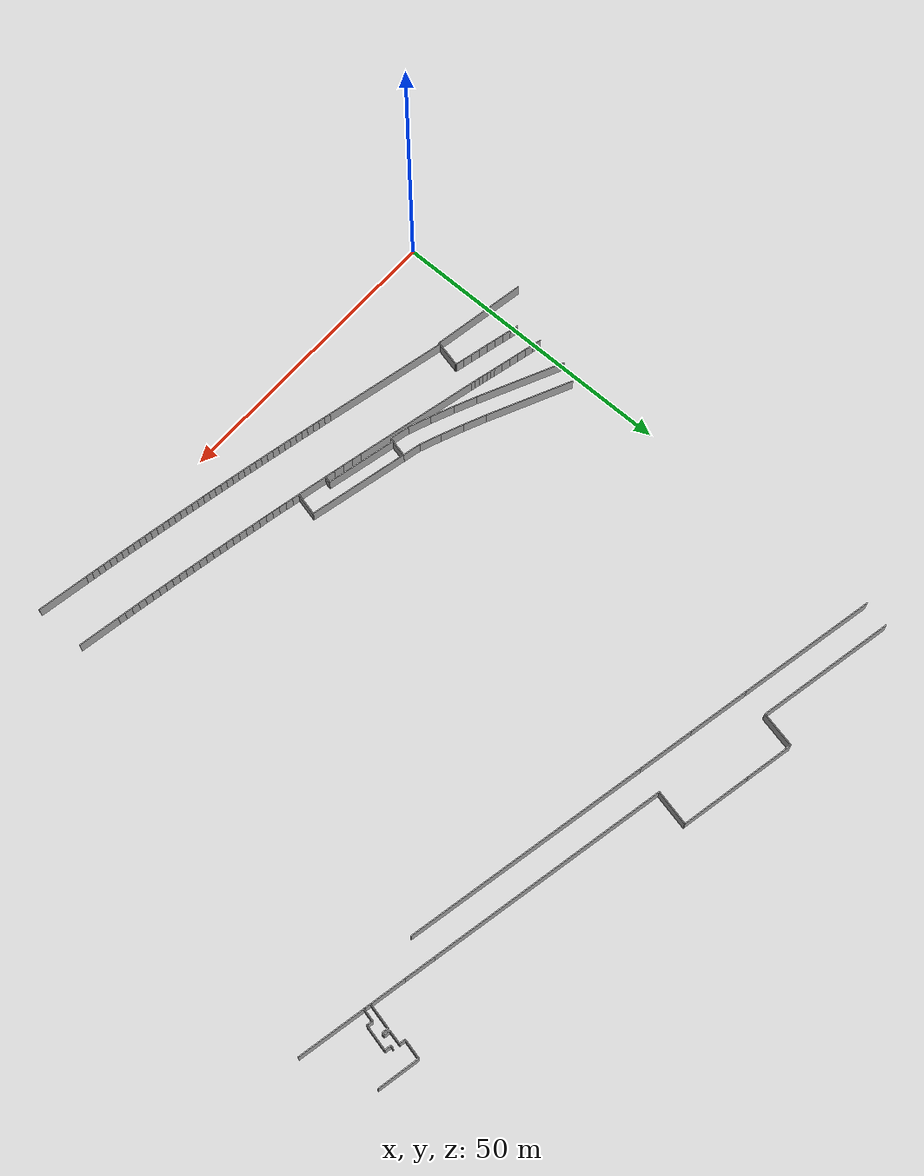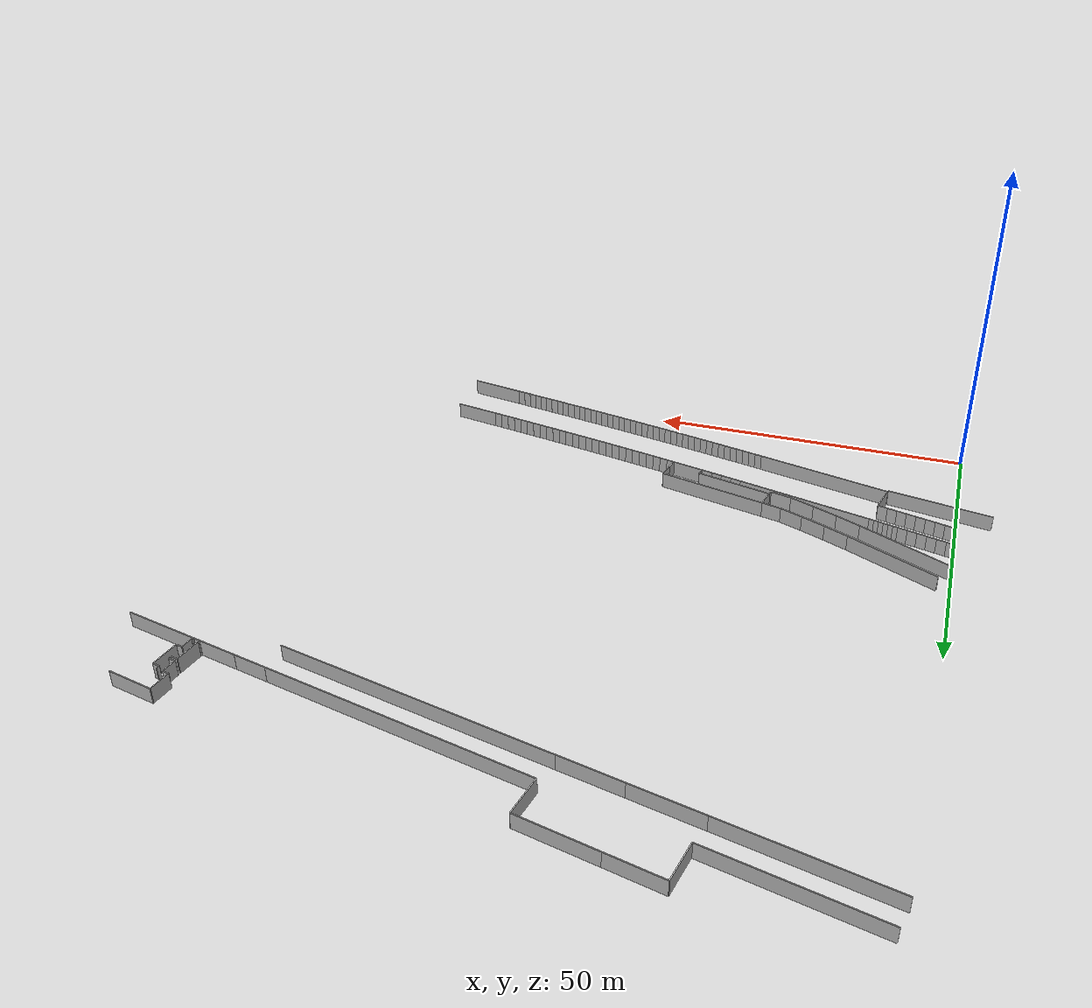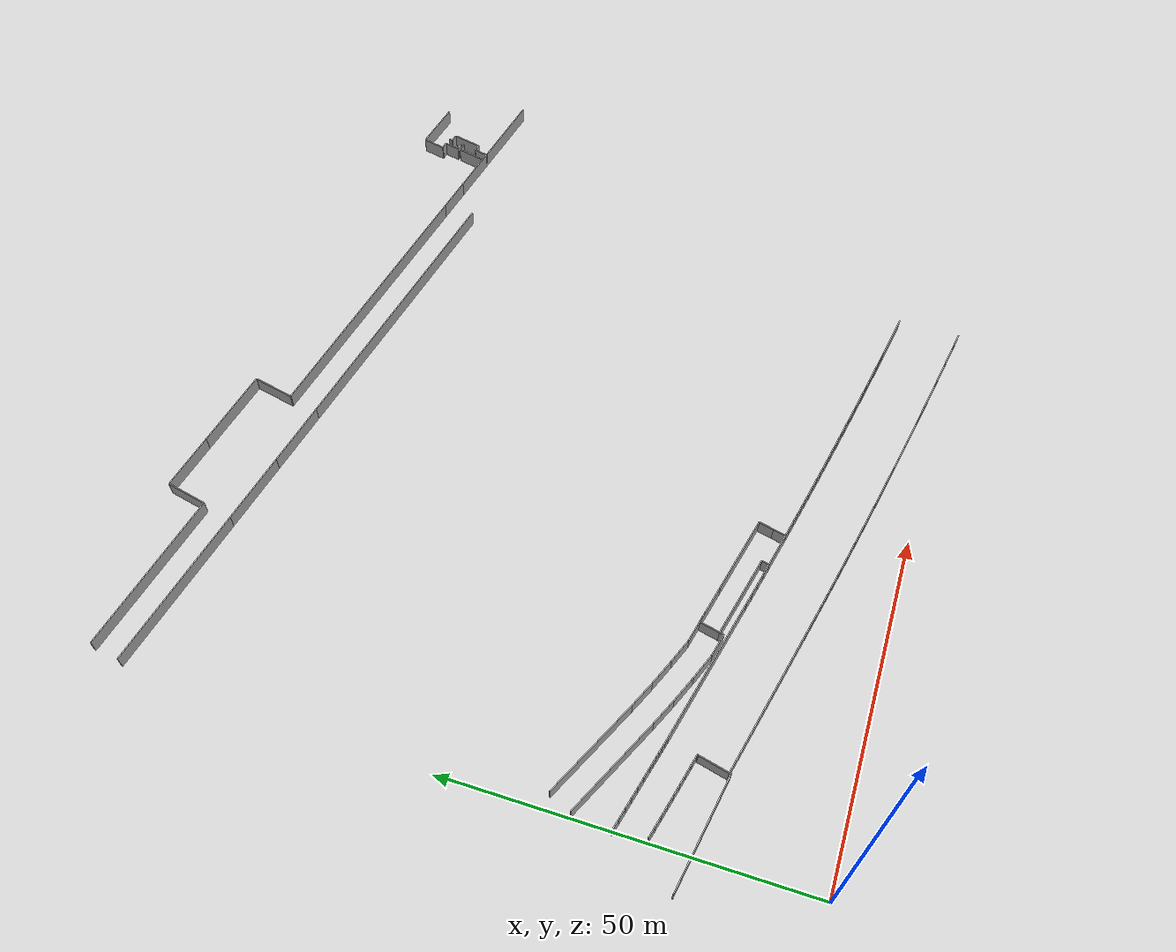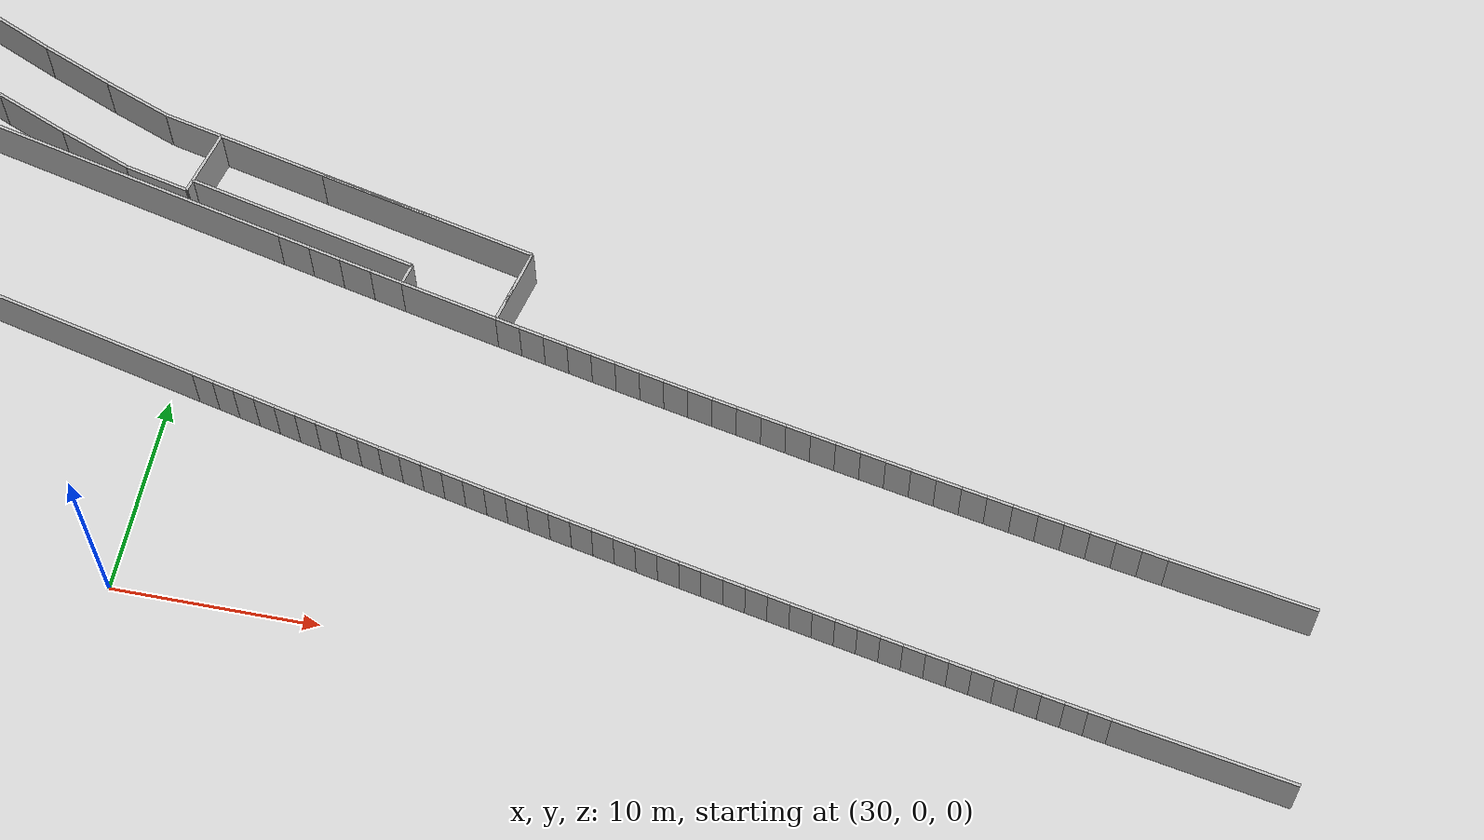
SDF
<sdf version="1.6">
 <model name="sps_0902">
  <static>1</static>
  <allow_auto_disable>0</allow_auto_disable>
  <link name="Wall28">
   <collision name="collision"><geometry><box><size>15.0816 0.15 2.5</size></box></geometry></collision>
   <visual name="visual">
    <geometry><box><size>15.0816 0.15 2.5</size></box></geometry>
    <transparency>0.0</transparency>
   </visual>
   <pose>7.05285 29.0338 1.25 0 -0 2.70048</pose>
  </link>
  <link name="Wall29">
   <collision name="collision"><geometry><box><size>4.01389 0.15 2.5</size></box></geometry></collision>
   <visual name="visual">
    <geometry><box><size>4.01389 0.15 2.5</size></box></geometry>
    <transparency>0.0</transparency>
   </visual>
   <pose>19.4061 23.41 1.25 0 -0 2.74713</pose>
  </link>
  <link name="Wall30">
   <collision name="collision"><geometry><box><size>5.98038 0.15 2.5</size></box></geometry></collision>
   <visual name="visual">
    <geometry><box><size>5.98038 0.15 2.5</size></box></geometry>
    <transparency>0.0</transparency>
   </visual>
   <pose>25.7827 95.2165 1.25 0 0 -1.78506</pose>
  </link>
  <link name="Wall31">
   <collision name="collision"><geometry><box><size>21.1297 0.15 2.5</size></box></geometry></collision>
   <visual name="visual">
    <geometry><box><size>21.1297 0.15 2.5</size></box></geometry>
    <transparency>0.0</transparency>
   </visual>
   <pose>23.0045 21.1647 1.25 0 0 -0.231213</pose>
  </link>
  <link name="Wall118">
   <collision name="collision"><geometry><box><size>16.258 0.15 2.5</size></box></geometry></collision>
   <visual name="visual">
    <geometry><box><size>16.258 0.15 2.5</size></box></geometry>
    <transparency>0.0</transparency>
   </visual>
   <pose>2.6691 16.4683 1.25 0 0 -0.176184</pose>
  </link>
  <link name="Wall119">
   <collision name="collision"><geometry><box><size>5.13421 0.15 2.5</size></box></geometry></collision>
   <visual name="visual">
    <geometry><box><size>5.13421 0.15 2.5</size></box></geometry>
    <transparency>0.0</transparency>
   </visual>
   <pose>86.9778 78.8386 1.25 0 -0 2.92731</pose>
  </link>
  <link name="Wall120">
   <collision name="collision"><geometry><box><size>40.7111 0.15 2.5</size></box></geometry></collision>
   <visual name="visual">
    <geometry><box><size>40.7111 0.15 2.5</size></box></geometry>
    <transparency>0.0</transparency>
   </visual>
   <pose>64.5795 83.7131 1.25 0 -0 2.92731</pose>
  </link>
  <link name="Wall121">
   <collision name="collision"><geometry><box><size>8.60433 0.15 2.5</size></box></geometry></collision>
   <visual name="visual">
    <geometry><box><size>8.60433 0.15 2.5</size></box></geometry>
    <transparency>0.0</transparency>
   </visual>
   <pose>80.2364 0.370085 1.25 0 0 -0.179431</pose>
  </link>
  <link name="Wall123">
   <collision name="collision"><geometry><box><size>7.06281 0.15 2.5</size></box></geometry></collision>
   <visual name="visual">
    <geometry><box><size>7.06281 0.15 2.5</size></box></geometry>
    <transparency>0.0</transparency>
   </visual>
   <pose>80.9947 8.87143 1.25 0 0 -0.179443</pose>
  </link>
  <link name="Wall196">
   <collision name="collision"><geometry><box><size>3.94369 0.15 2.5</size></box></geometry></collision>
   <visual name="visual">
    <geometry><box><size>3.94369 0.15 2.5</size></box></geometry>
    <transparency>0.0</transparency>
   </visual>
   <pose>17.1317 28.1964 1.25 0 0 -0.417479</pose>
  </link>
  <link name="Wall197">
   <collision name="collision"><geometry><box><size>21.1844 0.15 2.5</size></box></geometry></collision>
   <visual name="visual">
    <geometry><box><size>21.1844 0.15 2.5</size></box></geometry>
    <transparency>0.0</transparency>
   </visual>
   <pose>21.0443 12.8755 1.25 0 0 -0.229613</pose>
  </link>
  <link name="Wall198">
   <collision name="collision"><geometry><box><size>5.98036 0.15 2.5</size></box></geometry></collision>
   <visual name="visual">
    <geometry><box><size>5.98036 0.15 2.5</size></box></geometry>
    <transparency>0.0</transparency>
   </visual>
   <pose>45.3254 90.9635 1.25 0 0 -1.78509</pose>
  </link>
  <link name="Wall287">
   <collision name="collision"><geometry><box><size>3.93435 0.15 2.5</size></box></geometry></collision>
   <visual name="visual">
    <geometry><box><size>3.93435 0.15 2.5</size></box></geometry>
    <transparency>0.0</transparency>
   </visual>
   <pose>20.7505 26.6414 1.25 0 0 -0.394179</pose>
  </link>
  <link name="Wall288">
   <collision name="collision"><geometry><box><size>9.50174 0.15 2.5</size></box></geometry></collision>
   <visual name="visual">
    <geometry><box><size>9.50174 0.15 2.5</size></box></geometry>
    <transparency>0.0</transparency>
   </visual>
   <pose>39.1117 84.7528 1.25 0 -0 2.92731</pose>
  </link>
  <link name="Wall289">
   <collision name="collision"><geometry><box><size>10.4985 0.15 2.5</size></box></geometry></collision>
   <visual name="visual">
    <geometry><box><size>10.4985 0.15 2.5</size></box></geometry>
    <transparency>0.0</transparency>
   </visual>
   <pose>29.3403 86.8793 1.25 0 -0 2.92731</pose>
  </link>
  <link name="Wall290">
   <collision name="collision"><geometry><box><size>5.6374 0.15 2.5</size></box></geometry></collision>
   <visual name="visual">
    <geometry><box><size>5.6374 0.15 2.5</size></box></geometry>
    <transparency>0.0</transparency>
   </visual>
   <pose>31.7244 23.2149 1.25 0 0 -0.229042</pose>
  </link>
  <link name="Wall291">
   <collision name="collision"><geometry><box><size>11.3628 0.15 2.5</size></box></geometry></collision>
   <visual name="visual">
    <geometry><box><size>11.3628 0.15 2.5</size></box></geometry>
    <transparency>0.0</transparency>
   </visual>
   <pose>40.0025 21.285 1.25 0 0 -0.229042</pose>
  </link>
  <link name="Wall354">
   <collision name="collision"><geometry><box><size>4.02733 0.15 2.5</size></box></geometry></collision>
   <visual name="visual">
    <geometry><box><size>4.02733 0.15 2.5</size></box></geometry>
    <transparency>0.0</transparency>
   </visual>
   <pose>15.7125 24.9978 1.25 0 -0 2.72409</pose>
  </link>
  <link name="Wall355">
   <collision name="collision"><geometry><box><size>3.95796 0.15 2.5</size></box></geometry></collision>
   <visual name="visual">
    <geometry><box><size>3.95796 0.15 2.5</size></box></geometry>
    <transparency>0.0</transparency>
   </visual>
   <pose>23.1028 21.9201 1.25 0 -0 2.76998</pose>
  </link>
  <link name="Wall356">
   <collision name="collision"><geometry><box><size>23.6493 0.15 2.5</size></box></geometry></collision>
   <visual name="visual">
    <geometry><box><size>23.6493 0.15 2.5</size></box></geometry>
    <transparency>0.0</transparency>
   </visual>
   <pose>13.5927 94.8092 1.25 0 -0 2.92731</pose>
  </link>
  <link name="Wall357">
   <collision name="collision"><geometry><box><size>3.07591 0.15 2.5</size></box></geometry></collision>
   <visual name="visual">
    <geometry><box><size>3.07591 0.15 2.5</size></box></geometry>
    <transparency>0.0</transparency>
   </visual>
   <pose>27.4815 24.204 1.25 0 0 -0.229</pose>
  </link>
  <link name="Wall364">
   <collision name="collision"><geometry><box><size>41.6686 0.15 2.5</size></box></geometry></collision>
   <visual name="visual">
    <geometry><box><size>41.6686 0.15 2.5</size></box></geometry>
    <transparency>0.0</transparency>
   </visual>
   <pose>64.1117 79.312 1.25 0 -0 2.9273</pose>
  </link>
  <link name="Wall435">
   <collision name="collision"><geometry><box><size>0.179735 0.15 2.5</size></box></geometry></collision>
   <visual name="visual">
    <geometry><box><size>0.179735 0.15 2.5</size></box></geometry>
    <transparency>0.0</transparency>
   </visual>
   <pose>11.743 19.5065 1.25 0 -0 1.33603</pose>
  </link>
  <link name="Wall436">
   <collision name="collision"><geometry><box><size>23.6497 0.15 2.5</size></box></geometry></collision>
   <visual name="visual">
    <geometry><box><size>23.6497 0.15 2.5</size></box></geometry>
    <transparency>0.0</transparency>
   </visual>
   <pose>12.6567 90.5101 1.25 0 -0 2.9273</pose>
  </link>
  <link name="Wall437">
   <collision name="collision"><geometry><box><size>11.7608 0.15 2.5</size></box></geometry></collision>
   <visual name="visual">
    <geometry><box><size>11.7608 0.15 2.5</size></box></geometry>
    <transparency>0.0</transparency>
   </visual>
   <pose>40.2154 95.1357 1.25 0 -0 2.92731</pose>
  </link>
  <link name="Wall438">
   <collision name="collision"><geometry><box><size>8.23941 0.15 2.5</size></box></geometry></collision>
   <visual name="visual">
    <geometry><box><size>8.23941 0.15 2.5</size></box></geometry>
    <transparency>0.0</transparency>
   </visual>
   <pose>30.444 97.2623 1.25 0 -0 2.92731</pose>
  </link>
  <link name="Wall532">
   <collision name="collision"><geometry><box><size>0.249583 0.15 2.5</size></box></geometry></collision>
   <visual name="visual">
    <geometry><box><size>0.249583 0.15 2.5</size></box></geometry>
    <transparency>0.0</transparency>
   </visual>
   <pose>10.7012 15.1649 1.25 0 -0 1.33709</pose>
  </link>
  <link name="Wall533">
   <collision name="collision"><geometry><box><size>14.9395 0.15 2.5</size></box></geometry></collision>
   <visual name="visual">
    <geometry><box><size>14.9395 0.15 2.5</size></box></geometry>
    <transparency>0.0</transparency>
   </visual>
   <pose>8.57455 32.1851 1.25 0 0 -0.441118</pose>
  </link>
  <link name="Wall534">
   <collision name="collision"><geometry><box><size>3.66754 0.15 2.5</size></box></geometry></collision>
   <visual name="visual">
    <geometry><box><size>3.66754 0.15 2.5</size></box></geometry>
    <transparency>0.0</transparency>
   </visual>
   <pose>24.2753 25.2195 1.25 0 0 -0.371909</pose>
  </link>
  <link name="Wall535">
   <collision name="collision"><geometry><box><size>3.32587 0.15 2.5</size></box></geometry></collision>
   <visual name="visual">
    <geometry><box><size>3.32587 0.15 2.5</size></box></geometry>
    <transparency>0.0</transparency>
   </visual>
   <pose>26.5662 20.8238 1.25 0 -0 2.91247</pose>
  </link>
  <link name="Wall536">
   <collision name="collision"><geometry><box><size>0.61782 0.15 2.5</size></box></geometry></collision>
   <visual name="visual">
    <geometry><box><size>0.61782 0.15 2.5</size></box></geometry>
    <transparency>0.0</transparency>
   </visual>
   <pose>28.2556 20.747 1.25 0 0 -1.79941</pose>
  </link>
  <link name="Wall537">
   <collision name="collision"><geometry><box><size>2.15842 0.15 2.5</size></box></geometry></collision>
   <visual name="visual">
    <geometry><box><size>2.15842 0.15 2.5</size></box></geometry>
    <transparency>0.0</transparency>
   </visual>
   <pose>45.2903 18.9441 1.25 0 0 -1.79996</pose>
  </link>
  <link name="Wall538">
   <collision name="collision"><geometry><box><size>1.77993 0.15 2.5</size></box></geometry></collision>
   <visual name="visual">
    <geometry><box><size>1.77993 0.15 2.5</size></box></geometry>
    <transparency>0.0</transparency>
   </visual>
   <pose>44.843 17.0264 1.25 0 0 -1.79996</pose>
  </link>
  <link name="Wall539">
   <collision name="collision"><geometry><box><size>18.5 0.15 2.5</size></box></geometry></collision>
   <visual name="visual">
    <geometry><box><size>18.5 0.15 2.5</size></box></geometry>
    <transparency>0.0</transparency>
   </visual>
   <pose>98.5246 76.3257 1.25 0 0 -0.214283</pose>
  </link>
  <link name="Wall995">
   <collision name="collision"><geometry><box><size>0.249583 0.15 2.5</size></box></geometry></collision>
   <visual name="visual">
    <geometry><box><size>0.249583 0.15 2.5</size></box></geometry>
    <transparency>0.0</transparency>
   </visual>
   <pose>10.7012 15.1649 1.25 0 0 -1.80451</pose>
  </link>
  <link name="Wall1007">
   <collision name="collision"><geometry><box><size>4.2502 0.15 2.5</size></box></geometry></collision>
   <visual name="visual">
    <geometry><box><size>4.2502 0.15 2.5</size></box></geometry>
    <transparency>0.0</transparency>
   </visual>
   <pose>11.2261 17.3527 1.25 0 0 -1.80637</pose>
  </link>
  <link name="Wall1008">
   <collision name="collision"><geometry><box><size>2.8821 0.15 2.5</size></box></geometry></collision>
   <visual name="visual">
    <geometry><box><size>2.8821 0.15 2.5</size></box></geometry>
    <transparency>0.0</transparency>
   </visual>
   <pose>28.6525 22.4514 1.25 0 -0 1.34202</pose>
  </link>
  <link name="Wall1009">
   <collision name="collision"><geometry><box><size>17.0002 0.15 2.5</size></box></geometry></collision>
   <visual name="visual">
    <geometry><box><size>17.0002 0.15 2.5</size></box></geometry>
    <transparency>0.0</transparency>
   </visual>
   <pose>37.2574 21.925 1.25 0 0 -0.229042</pose>
  </link>
  <link name="Wall1010">
   <collision name="collision"><geometry><box><size>3.93835 0.15 2.5</size></box></geometry></collision>
   <visual name="visual">
    <geometry><box><size>3.93835 0.15 2.5</size></box></geometry>
    <transparency>0.0</transparency>
   </visual>
   <pose>45.0882 18.0774 1.25 0 0 -1.79996</pose>
  </link>
  <link name="Wall1011">
   <collision name="collision"><geometry><box><size>4.99972 0.15 2.5</size></box></geometry></collision>
   <visual name="visual">
    <geometry><box><size>4.99972 0.15 2.5</size></box></geometry>
    <transparency>0.0</transparency>
   </visual>
   <pose>42.2015 16.7066 1.25 0 -0 2.92103</pose>
  </link>
  <link name="Wall1012">
   <collision name="collision"><geometry><box><size>1.08065 0.15 2.5</size></box></geometry></collision>
   <visual name="visual">
    <geometry><box><size>1.08065 0.15 2.5</size></box></geometry>
    <transparency>0.0</transparency>
   </visual>
   <pose>39.8854 17.7796 1.25 0 -0 1.34076</pose>
  </link>
  <link name="Wall1013">
   <collision name="collision"><geometry><box><size>12.0005 0.15 2.5</size></box></geometry></collision>
   <visual name="visual">
    <geometry><box><size>12.0005 0.15 2.5</size></box></geometry>
    <transparency>0.0</transparency>
   </visual>
   <pose>34.1671 19.6768 1.25 0 -0 2.91105</pose>
  </link>
  <link name="Wall2366">
   <collision name="collision"><geometry><box><size>0.499995 0.15 2.5</size></box></geometry></collision>
   <visual name="visual">
    <geometry><box><size>0.499995 0.15 2.5</size></box></geometry>
    <transparency>0.0</transparency>
   </visual>
   <pose>97.8079 83.2656 1.25 0 0 -1.78483</pose>
  </link>
  <link name="Wall2367">
   <collision name="collision"><geometry><box><size>1.07993 0.15 2.5</size></box></geometry></collision>
   <visual name="visual">
    <geometry><box><size>1.07993 0.15 2.5</size></box></geometry>
    <transparency>0.0</transparency>
   </visual>
   <pose>98.2825 82.9065 1.25 0 0 -0.214255</pose>
  </link>
  <link name="Wall2368">
   <collision name="collision"><geometry><box><size>4.30218 0.15 2.5</size></box></geometry></collision>
   <visual name="visual">
    <geometry><box><size>4.30218 0.15 2.5</size></box></geometry>
    <transparency>0.0</transparency>
   </visual>
   <pose>98.3527 80.6898 1.25 0 0 -1.78507</pose>
  </link>
  <link name="Wall2369">
   <collision name="collision"><geometry><box><size>0.99991 0.15 2.5</size></box></geometry></collision>
   <visual name="visual">
    <geometry><box><size>0.99991 0.15 2.5</size></box></geometry>
    <transparency>0.0</transparency>
   </visual>
   <pose>97.4068 78.6942 1.25 0 -0 2.92735</pose>
  </link>
  <link name="Wall2370">
   <collision name="collision"><geometry><box><size>1.72873 0.15 2.5</size></box></geometry></collision>
   <visual name="visual">
    <geometry><box><size>1.72873 0.15 2.5</size></box></geometry>
    <transparency>0.0</transparency>
   </visual>
   <pose>96.7345 77.9559 1.25 0 0 -1.78505</pose>
  </link>
  <link name="Wall2371">
   <collision name="collision"><geometry><box><size>0.347934 0.15 2.5</size></box></geometry></collision>
   <visual name="visual">
    <geometry><box><size>0.347934 0.15 2.5</size></box></geometry>
    <transparency>0.0</transparency>
   </visual>
   <pose>96.5137 76.9413 1.25 0 0 -1.78522</pose>
  </link>
  <link name="Wall2372">
   <collision name="collision"><geometry><box><size>1.15995 0.15 2.5</size></box></geometry></collision>
   <visual name="visual">
    <geometry><box><size>1.15995 0.15 2.5</size></box></geometry>
    <transparency>0.0</transparency>
   </visual>
   <pose>95.91 76.8948 1.25 0 -0 2.92706</pose>
  </link>
  <link name="Wall2373">
   <collision name="collision"><geometry><box><size>0.347981 0.15 2.5</size></box></geometry></collision>
   <visual name="visual">
    <geometry><box><size>0.347981 0.15 2.5</size></box></geometry>
    <transparency>0.0</transparency>
   </visual>
   <pose>95.3803 77.1883 1.25 0 -0 1.35658</pose>
  </link>
  <link name="Wall2374">
   <collision name="collision"><geometry><box><size>3.87829 0.15 2.5</size></box></geometry></collision>
   <visual name="visual">
    <geometry><box><size>3.87829 0.15 2.5</size></box></geometry>
    <transparency>0.0</transparency>
   </visual>
   <pose>95.8296 79.2531 1.25 0 -0 1.35655</pose>
  </link>
  <link name="Wall2375">
   <collision name="collision"><geometry><box><size>1.07989 0.15 2.5</size></box></geometry></collision>
   <visual name="visual">
    <geometry><box><size>1.07989 0.15 2.5</size></box></geometry>
    <transparency>0.0</transparency>
   </visual>
   <pose>96.7695 81.0332 1.25 0 0 -0.214089</pose>
  </link>
  <link name="Wall2376">
   <collision name="collision"><geometry><box><size>0.399937 0.15 2.5</size></box></geometry></collision>
   <visual name="visual">
    <geometry><box><size>0.399937 0.15 2.5</size></box></geometry>
    <transparency>0.0</transparency>
   </visual>
   <pose>97.3396 81.1139 1.25 0 -0 1.35673</pose>
  </link>
  <link name="Wall2377">
   <collision name="collision"><geometry><box><size>1.07987 0.15 2.5</size></box></geometry></collision>
   <visual name="visual">
    <geometry><box><size>1.07987 0.15 2.5</size></box></geometry>
    <transparency>0.0</transparency>
   </visual>
   <pose>96.8545 81.4241 1.25 0 -0 2.92733</pose>
  </link>
  <link name="Wall2378">
   <collision name="collision"><geometry><box><size>2.25233 0.15 2.5</size></box></geometry></collision>
   <visual name="visual">
    <geometry><box><size>2.25233 0.15 2.5</size></box></geometry>
    <transparency>0.0</transparency>
   </visual>
   <pose>96.5664 82.6393 1.25 0 -0 1.35649</pose>
  </link>
  <link name="Wall2379">
   <collision name="collision"><geometry><box><size>1.00027 0.15 2.5</size></box></geometry></collision>
   <visual name="visual">
    <geometry><box><size>1.00027 0.15 2.5</size></box></geometry>
    <transparency>0.0</transparency>
   </visual>
   <pose>96.3172 83.846 1.25 0 -0 2.92743</pose>
  </link>
  <link name="Wall2380">
   <collision name="collision"><geometry><box><size>3.25956 0.15 2.5</size></box></geometry></collision>
   <visual name="visual">
    <geometry><box><size>3.25956 0.15 2.5</size></box></geometry>
    <transparency>0.0</transparency>
   </visual>
   <pose>96.175 85.5448 1.25 0 -0 1.3565</pose>
  </link>
  <link name="Wall2381">
   <collision name="collision"><geometry><box><size>7.06024 0.15 2.5</size></box></geometry></collision>
   <visual name="visual">
    <geometry><box><size>7.06024 0.15 2.5</size></box></geometry>
    <transparency>0.0</transparency>
   </visual>
   <pose>99.971 86.3867 1.25 0 0 -0.214257</pose>
  </link>
  <link name="Wall2737">
   <collision name="collision"><geometry><box><size>1.08602 0.15 2.5</size></box></geometry></collision>
   <visual name="visual">
    <geometry><box><size>1.08602 0.15 2.5</size></box></geometry>
    <transparency>0.0</transparency>
   </visual>
   <pose>31.8873 10.3412 1.25 0 0 -0.229453</pose>
  </link>
  <link name="Wall2738">
   <collision name="collision"><geometry><box><size>1.08593 0.15 2.5</size></box></geometry></collision>
   <visual name="visual">
    <geometry><box><size>1.08593 0.15 2.5</size></box></geometry>
    <transparency>0.0</transparency>
   </visual>
   <pose>32.9449 10.0949 1.25 0 0 -0.228088</pose>
  </link>
  <link name="Wall2739">
   <collision name="collision"><geometry><box><size>1.08609 0.15 2.5</size></box></geometry></collision>
   <visual name="visual">
    <geometry><box><size>1.08609 0.15 2.5</size></box></geometry>
    <transparency>0.0</transparency>
   </visual>
   <pose>34.003 9.8499 1.25 0 0 -0.227014</pose>
  </link>
  <link name="Wall2740">
   <collision name="collision"><geometry><box><size>1.08604 0.15 2.5</size></box></geometry></collision>
   <visual name="visual">
    <geometry><box><size>1.08604 0.15 2.5</size></box></geometry>
    <transparency>0.0</transparency>
   </visual>
   <pose>35.0613 9.60597 1.25 0 0 -0.226045</pose>
  </link>
  <link name="Wall2741">
   <collision name="collision"><geometry><box><size>1.08608 0.15 2.5</size></box></geometry></collision>
   <visual name="visual">
    <geometry><box><size>1.08608 0.15 2.5</size></box></geometry>
    <transparency>0.0</transparency>
   </visual>
   <pose>36.1199 9.36326 1.25 0 0 -0.22471</pose>
  </link>
  <link name="Wall2742">
   <collision name="collision"><geometry><box><size>1.08605 0.15 2.5</size></box></geometry></collision>
   <visual name="visual">
    <geometry><box><size>1.08605 0.15 2.5</size></box></geometry>
    <transparency>0.0</transparency>
   </visual>
   <pose>37.1788 9.12187 1.25 0 0 -0.223564</pose>
  </link>
  <link name="Wall2743">
   <collision name="collision"><geometry><box><size>1.08596 0.15 2.5</size></box></geometry></collision>
   <visual name="visual">
    <geometry><box><size>1.08596 0.15 2.5</size></box></geometry>
    <transparency>0.0</transparency>
   </visual>
   <pose>38.2379 8.8817 1.25 0 0 -0.22243</pose>
  </link>
  <link name="Wall2744">
   <collision name="collision"><geometry><box><size>1.08606 0.15 2.5</size></box></geometry></collision>
   <visual name="visual">
    <geometry><box><size>1.08606 0.15 2.5</size></box></geometry>
    <transparency>0.0</transparency>
   </visual>
   <pose>39.2973 8.64271 1.25 0 0 -0.221314</pose>
  </link>
  <link name="Wall2745">
   <collision name="collision"><geometry><box><size>1.08604 0.15 2.5</size></box></geometry></collision>
   <visual name="visual">
    <geometry><box><size>1.08604 0.15 2.5</size></box></geometry>
    <transparency>0.0</transparency>
   </visual>
   <pose>40.357 8.40489 1.25 0 0 -0.220223</pose>
  </link>
  <link name="Wall2746">
   <collision name="collision"><geometry><box><size>1.08594 0.15 2.5</size></box></geometry></collision>
   <visual name="visual">
    <geometry><box><size>1.08594 0.15 2.5</size></box></geometry>
    <transparency>0.0</transparency>
   </visual>
   <pose>41.4169 8.16829 1.25 0 0 -0.219035</pose>
  </link>
  <link name="Wall2747">
   <collision name="collision"><geometry><box><size>1.08587 0.15 2.5</size></box></geometry></collision>
   <visual name="visual">
    <geometry><box><size>1.08587 0.15 2.5</size></box></geometry>
    <transparency>0.0</transparency>
   </visual>
   <pose>42.477 7.93291 1.25 0 0 -0.217956</pose>
  </link>
  <link name="Wall2748">
   <collision name="collision"><geometry><box><size>1.08622 0.15 2.5</size></box></geometry></collision>
   <visual name="visual">
    <geometry><box><size>1.08622 0.15 2.5</size></box></geometry>
    <transparency>0.0</transparency>
   </visual>
   <pose>43.5374 7.69868 1.25 0 0 -0.216792</pose>
  </link>
  <link name="Wall2749">
   <collision name="collision"><geometry><box><size>1.086 0.15 2.5</size></box></geometry></collision>
   <visual name="visual">
    <geometry><box><size>1.086 0.15 2.5</size></box></geometry>
    <transparency>0.0</transparency>
   </visual>
   <pose>44.5983 7.46568 1.25 0 0 -0.215627</pose>
  </link>
  <link name="Wall2750">
   <collision name="collision"><geometry><box><size>1.08601 0.15 2.5</size></box></geometry></collision>
   <visual name="visual">
    <geometry><box><size>1.08601 0.15 2.5</size></box></geometry>
    <transparency>0.0</transparency>
   </visual>
   <pose>45.6593 7.23399 1.25 0 0 -0.214359</pose>
  </link>
  <link name="Wall2751">
   <collision name="collision"><geometry><box><size>1.08603 0.15 2.5</size></box></geometry></collision>
   <visual name="visual">
    <geometry><box><size>1.08603 0.15 2.5</size></box></geometry>
    <transparency>0.0</transparency>
   </visual>
   <pose>46.7205 7.00349 1.25 0 0 -0.213378</pose>
  </link>
  <link name="Wall2752">
   <collision name="collision"><geometry><box><size>1.0862 0.15 2.5</size></box></geometry></collision>
   <visual name="visual">
    <geometry><box><size>1.0862 0.15 2.5</size></box></geometry>
    <transparency>0.0</transparency>
   </visual>
   <pose>47.7822 6.77409 1.25 0 0 -0.212251</pose>
  </link>
  <link name="Wall2753">
   <collision name="collision"><geometry><box><size>1.08585 0.15 2.5</size></box></geometry></collision>
   <visual name="visual">
    <geometry><box><size>1.08585 0.15 2.5</size></box></geometry>
    <transparency>0.0</transparency>
   </visual>
   <pose>48.844 6.54597 1.25 0 0 -0.210999</pose>
  </link>
  <link name="Wall2754">
   <collision name="collision"><geometry><box><size>1.08605 0.15 2.5</size></box></geometry></collision>
   <visual name="visual">
    <geometry><box><size>1.08605 0.15 2.5</size></box></geometry>
    <transparency>0.0</transparency>
   </visual>
   <pose>49.9059 6.31908 1.25 0 0 -0.209983</pose>
  </link>
  <link name="Wall2755">
   <collision name="collision"><geometry><box><size>1.086 0.15 2.5</size></box></geometry></collision>
   <visual name="visual">
    <geometry><box><size>1.086 0.15 2.5</size></box></geometry>
    <transparency>0.0</transparency>
   </visual>
   <pose>50.9683 6.0934 1.25 0 0 -0.208671</pose>
  </link>
  <link name="Wall2756">
   <collision name="collision"><geometry><box><size>1.08592 0.15 2.5</size></box></geometry></collision>
   <visual name="visual">
    <geometry><box><size>1.08592 0.15 2.5</size></box></geometry>
    <transparency>0.0</transparency>
   </visual>
   <pose>52.0308 5.86891 1.25 0 0 -0.207768</pose>
  </link>
  <link name="Wall2757">
   <collision name="collision"><geometry><box><size>1.08615 0.15 2.5</size></box></geometry></collision>
   <visual name="visual">
    <geometry><box><size>1.08615 0.15 2.5</size></box></geometry>
    <transparency>0.0</transparency>
   </visual>
   <pose>53.0936 5.64549 1.25 0 0 -0.206631</pose>
  </link>
  <link name="Wall2758">
   <collision name="collision"><geometry><box><size>1.08597 0.15 2.5</size></box></geometry></collision>
   <visual name="visual">
    <geometry><box><size>1.08597 0.15 2.5</size></box></geometry>
    <transparency>0.0</transparency>
   </visual>
   <pose>54.1567 5.42338 1.25 0 0 -0.205288</pose>
  </link>
  <link name="Wall2759">
   <collision name="collision"><geometry><box><size>1.08598 0.15 2.5</size></box></geometry></collision>
   <visual name="visual">
    <geometry><box><size>1.08598 0.15 2.5</size></box></geometry>
    <transparency>0.0</transparency>
   </visual>
   <pose>55.22 5.20259 1.25 0 0 -0.204196</pose>
  </link>
  <link name="Wall2760">
   <collision name="collision"><geometry><box><size>1.08609 0.15 2.5</size></box></geometry></collision>
   <visual name="visual">
    <geometry><box><size>1.08609 0.15 2.5</size></box></geometry>
    <transparency>0.0</transparency>
   </visual>
   <pose>56.2836 4.98299 1.25 0 0 -0.203027</pose>
  </link>
  <link name="Wall2761">
   <collision name="collision"><geometry><box><size>1.08589 0.15 2.5</size></box></geometry></collision>
   <visual name="visual">
    <geometry><box><size>1.08589 0.15 2.5</size></box></geometry>
    <transparency>0.0</transparency>
   </visual>
   <pose>57.3473 4.76448 1.25 0 0 -0.202147</pose>
  </link>
  <link name="Wall2762">
   <collision name="collision"><geometry><box><size>1.08602 0.15 2.5</size></box></geometry></collision>
   <visual name="visual">
    <geometry><box><size>1.08602 0.15 2.5</size></box></geometry>
    <transparency>0.0</transparency>
   </visual>
   <pose>58.4113 4.54719 1.25 0 0 -0.200746</pose>
  </link>
  <link name="Wall2763">
   <collision name="collision"><geometry><box><size>1.08622 0.15 2.5</size></box></geometry></collision>
   <visual name="visual">
    <geometry><box><size>1.08622 0.15 2.5</size></box></geometry>
    <transparency>0.0</transparency>
   </visual>
   <pose>59.4758 4.33119 1.25 0 0 -0.199677</pose>
  </link>
  <link name="Wall2764">
   <collision name="collision"><geometry><box><size>1.08591 0.15 2.5</size></box></geometry></collision>
   <visual name="visual">
    <geometry><box><size>1.08591 0.15 2.5</size></box></geometry>
    <transparency>0.0</transparency>
   </visual>
   <pose>60.5404 4.11638 1.25 0 0 -0.198531</pose>
  </link>
  <link name="Wall2765">
   <collision name="collision"><geometry><box><size>1.0861 0.15 2.5</size></box></geometry></collision>
   <visual name="visual">
    <geometry><box><size>1.0861 0.15 2.5</size></box></geometry>
    <transparency>0.0</transparency>
   </visual>
   <pose>61.6052 3.90279 1.25 0 0 -0.197407</pose>
  </link>
  <link name="Wall2766">
   <collision name="collision"><geometry><box><size>1.08604 0.15 2.5</size></box></geometry></collision>
   <visual name="visual">
    <geometry><box><size>1.08604 0.15 2.5</size></box></geometry>
    <transparency>0.0</transparency>
   </visual>
   <pose>62.6702 3.69038 1.25 0 0 -0.196271</pose>
  </link>
  <link name="Wall2767">
   <collision name="collision"><geometry><box><size>1.08604 0.15 2.5</size></box></geometry></collision>
   <visual name="visual">
    <geometry><box><size>1.08604 0.15 2.5</size></box></geometry>
    <transparency>0.0</transparency>
   </visual>
   <pose>63.7356 3.4792 1.25 0 0 -0.195125</pose>
  </link>
  <link name="Wall2768">
   <collision name="collision"><geometry><box><size>1.08596 0.15 2.5</size></box></geometry></collision>
   <visual name="visual">
    <geometry><box><size>1.08596 0.15 2.5</size></box></geometry>
    <transparency>0.0</transparency>
   </visual>
   <pose>64.8011 3.2693 1.25 0 0 -0.193879</pose>
  </link>
  <link name="Wall2769">
   <collision name="collision"><geometry><box><size>1.08612 0.15 2.5</size></box></geometry></collision>
   <visual name="visual">
    <geometry><box><size>1.08612 0.15 2.5</size></box></geometry>
    <transparency>0.0</transparency>
   </visual>
   <pose>65.8669 3.06059 1.25 0 0 -0.192877</pose>
  </link>
  <link name="Wall2770">
   <collision name="collision"><geometry><box><size>1.0859 0.15 2.5</size></box></geometry></collision>
   <visual name="visual">
    <geometry><box><size>1.0859 0.15 2.5</size></box></geometry>
    <transparency>0.0</transparency>
   </visual>
   <pose>66.9329 2.85298 1.25 0 0 -0.191829</pose>
  </link>
  <link name="Wall2771">
   <collision name="collision"><geometry><box><size>1.08604 0.15 2.5</size></box></geometry></collision>
   <visual name="visual">
    <geometry><box><size>1.08604 0.15 2.5</size></box></geometry>
    <transparency>0.0</transparency>
   </visual>
   <pose>67.999 2.64668 1.25 0 0 -0.19043</pose>
  </link>
  <link name="Wall2772">
   <collision name="collision"><geometry><box><size>1.086 0.15 2.5</size></box></geometry></collision>
   <visual name="visual">
    <geometry><box><size>1.086 0.15 2.5</size></box></geometry>
    <transparency>0.0</transparency>
   </visual>
   <pose>69.0655 2.4417 1.25 0 0 -0.189349</pose>
  </link>
  <link name="Wall2773">
   <collision name="collision"><geometry><box><size>1.08604 0.15 2.5</size></box></geometry></collision>
   <visual name="visual">
    <geometry><box><size>1.08604 0.15 2.5</size></box></geometry>
    <transparency>0.0</transparency>
   </visual>
   <pose>70.1323 2.23781 1.25 0 0 -0.188369</pose>
  </link>
  <link name="Wall2774">
   <collision name="collision"><geometry><box><size>1.08591 0.15 2.5</size></box></geometry></collision>
   <visual name="visual">
    <geometry><box><size>1.08591 0.15 2.5</size></box></geometry>
    <transparency>0.0</transparency>
   </visual>
   <pose>71.1991 2.03511 1.25 0 0 -0.187133</pose>
  </link>
  <link name="Wall2775">
   <collision name="collision"><geometry><box><size>1.0862 0.15 2.5</size></box></geometry></collision>
   <visual name="visual">
    <geometry><box><size>1.0862 0.15 2.5</size></box></geometry>
    <transparency>0.0</transparency>
   </visual>
   <pose>72.2663 1.8336 1.25 0 0 -0.186111</pose>
  </link>
  <link name="Wall2776">
   <collision name="collision"><geometry><box><size>1.08606 0.15 2.5</size></box></geometry></collision>
   <visual name="visual">
    <geometry><box><size>1.08606 0.15 2.5</size></box></geometry>
    <transparency>0.0</transparency>
   </visual>
   <pose>73.3339 1.63331 1.25 0 0 -0.18482</pose>
  </link>
  <link name="Wall2777">
   <collision name="collision"><geometry><box><size>1.08591 0.15 2.5</size></box></geometry></collision>
   <visual name="visual">
    <geometry><box><size>1.08591 0.15 2.5</size></box></geometry>
    <transparency>0.0</transparency>
   </visual>
   <pose>74.4015 1.43431 1.25 0 0 -0.18376</pose>
  </link>
  <link name="Wall2778">
   <collision name="collision"><geometry><box><size>1.08605 0.15 2.5</size></box></geometry></collision>
   <visual name="visual">
    <geometry><box><size>1.08605 0.15 2.5</size></box></geometry>
    <transparency>0.0</transparency>
   </visual>
   <pose>75.4693 1.23649 1.25 0 0 -0.182593</pose>
  </link>
  <link name="Wall8216">
   <collision name="collision"><geometry><box><size>1.6606 0.15 2.5</size></box></geometry></collision>
   <visual name="visual">
    <geometry><box><size>1.6606 0.15 2.5</size></box></geometry>
    <transparency>0.0</transparency>
   </visual>
   <pose>34.0969 18.5556 1.25 0 0 -0.228504</pose>
  </link>
  <link name="Wall8217">
   <collision name="collision"><geometry><box><size>1.66107 0.15 2.5</size></box></geometry></collision>
   <visual name="visual">
    <geometry><box><size>1.66107 0.15 2.5</size></box></geometry>
    <transparency>0.0</transparency>
   </visual>
   <pose>35.7149 18.1805 1.25 0 0 -0.227118</pose>
  </link>
  <link name="Wall8218">
   <collision name="collision"><geometry><box><size>1.6607 0.15 2.5</size></box></geometry></collision>
   <visual name="visual">
    <geometry><box><size>1.6607 0.15 2.5</size></box></geometry>
    <transparency>0.0</transparency>
   </visual>
   <pose>37.3334 17.8077 1.25 0 0 -0.225661</pose>
  </link>
  <link name="Wall8219">
   <collision name="collision"><geometry><box><size>1.66094 0.15 2.5</size></box></geometry></collision>
   <visual name="visual">
    <geometry><box><size>1.66094 0.15 2.5</size></box></geometry>
    <transparency>0.0</transparency>
   </visual>
   <pose>38.9524 17.4377 1.25 0 0 -0.223667</pose>
  </link>
  <link name="Wall8893">
   <collision name="collision"><geometry><box><size>1.49901 0.15 2.5</size></box></geometry></collision>
   <visual name="visual">
    <geometry><box><size>1.49901 0.15 2.5</size></box></geometry>
    <transparency>0.0</transparency>
   </visual>
   <pose>0.847343 22.2797 1.25 0 0 -0.24722</pose>
  </link>
  <link name="Wall8894">
   <collision name="collision"><geometry><box><size>1.49894 0.15 2.5</size></box></geometry></collision>
   <visual name="visual">
    <geometry><box><size>1.49894 0.15 2.5</size></box></geometry>
    <transparency>0.0</transparency>
   </visual>
   <pose>2.30105 21.9141 1.25 0 0 -0.245551</pose>
  </link>
  <link name="Wall8895">
   <collision name="collision"><geometry><box><size>1.49896 0.15 2.5</size></box></geometry></collision>
   <visual name="visual">
    <geometry><box><size>1.49896 0.15 2.5</size></box></geometry>
    <transparency>0.0</transparency>
   </visual>
   <pose>3.75533 21.5509 1.25 0 0 -0.243912</pose>
  </link>
  <link name="Wall8896">
   <collision name="collision"><geometry><box><size>1.49884 0.15 2.5</size></box></geometry></collision>
   <visual name="visual">
    <geometry><box><size>1.49884 0.15 2.5</size></box></geometry>
    <transparency>0.0</transparency>
   </visual>
   <pose>5.21014 21.19 1.25 0 0 -0.242421</pose>
  </link>
  <link name="Wall8897">
   <collision name="collision"><geometry><box><size>1.49909 0.15 2.5</size></box></geometry></collision>
   <visual name="visual">
    <geometry><box><size>1.49909 0.15 2.5</size></box></geometry>
    <transparency>0.0</transparency>
   </visual>
   <pose>6.66555 20.8313 1.25 0 0 -0.240871</pose>
  </link>
  <link name="Wall8898">
   <collision name="collision"><geometry><box><size>1.49886 0.15 2.5</size></box></geometry></collision>
   <visual name="visual">
    <geometry><box><size>1.49886 0.15 2.5</size></box></geometry>
    <transparency>0.0</transparency>
   </visual>
   <pose>8.12154 20.4749 1.25 0 0 -0.239231</pose>
  </link>
  <link name="Wall8899">
   <collision name="collision"><geometry><box><size>1.49897 0.15 2.5</size></box></geometry></collision>
   <visual name="visual">
    <geometry><box><size>1.49897 0.15 2.5</size></box></geometry>
    <transparency>0.0</transparency>
   </visual>
   <pose>9.57806 20.1209 1.25 0 0 -0.237621</pose>
  </link>
  <link name="Wall8900">
   <collision name="collision"><geometry><box><size>1.49897 0.15 2.5</size></box></geometry></collision>
   <visual name="visual">
    <geometry><box><size>1.49897 0.15 2.5</size></box></geometry>
    <transparency>0.0</transparency>
   </visual>
   <pose>11.0352 19.7692 1.25 0 0 -0.236071</pose>
  </link>
  <link name="Wall9973">
   <collision name="collision"><geometry><box><size>1.49234 0.15 2.5</size></box></geometry></collision>
   <visual name="visual">
    <geometry><box><size>1.49234 0.15 2.5</size></box></geometry>
    <transparency>0.0</transparency>
   </visual>
   <pose>0.413474 26.6604 1.25 0 0 -0.248728</pose>
  </link>
  <link name="Wall9974">
   <collision name="collision"><geometry><box><size>1.49234 0.15 2.5</size></box></geometry></collision>
   <visual name="visual">
    <geometry><box><size>1.49234 0.15 2.5</size></box></geometry>
    <transparency>0.0</transparency>
   </visual>
   <pose>1.86016 26.2941 1.25 0 0 -0.24725</pose>
  </link>
  <link name="Wall9975">
   <collision name="collision"><geometry><box><size>1.4924 0.15 2.5</size></box></geometry></collision>
   <visual name="visual">
    <geometry><box><size>1.4924 0.15 2.5</size></box></geometry>
    <transparency>0.0</transparency>
   </visual>
   <pose>3.30746 25.9301 1.25 0 0 -0.245554</pose>
  </link>
  <link name="Wall9976">
   <collision name="collision"><geometry><box><size>1.49258 0.15 2.5</size></box></geometry></collision>
   <visual name="visual">
    <geometry><box><size>1.49258 0.15 2.5</size></box></geometry>
    <transparency>0.0</transparency>
   </visual>
   <pose>4.75545 25.5684 1.25 0 0 -0.244007</pose>
  </link>
  <link name="Wall9977">
   <collision name="collision"><geometry><box><size>1.4924 0.15 2.5</size></box></geometry></collision>
   <visual name="visual">
    <geometry><box><size>1.4924 0.15 2.5</size></box></geometry>
    <transparency>0.0</transparency>
   </visual>
   <pose>6.20403 25.209 1.25 0 0 -0.24235</pose>
  </link>
  <link name="Wall9978">
   <collision name="collision"><geometry><box><size>1.49244 0.15 2.5</size></box></geometry></collision>
   <visual name="visual">
    <geometry><box><size>1.49244 0.15 2.5</size></box></geometry>
    <transparency>0.0</transparency>
   </visual>
   <pose>7.65313 24.852 1.25 0 0 -0.240743</pose>
  </link>
  <link name="Wall9979">
   <collision name="collision"><geometry><box><size>0.746274 0.15 2.5</size></box></geometry></collision>
   <visual name="visual">
    <geometry><box><size>0.746274 0.15 2.5</size></box></geometry>
    <transparency>0.0</transparency>
   </visual>
   <pose>8.73995 24.5841 1.25 0 0 -0.24359</pose>
  </link>
  <link name="Wall9980">
   <collision name="collision"><geometry><box><size>0.746156 0.15 2.5</size></box></geometry></collision>
   <visual name="visual">
    <geometry><box><size>0.746156 0.15 2.5</size></box></geometry>
    <transparency>0.0</transparency>
   </visual>
   <pose>9.46386 24.403 1.25 0 0 -0.246665</pose>
  </link>
  <link name="Wall9981">
   <collision name="collision"><geometry><box><size>0.746224 0.15 2.5</size></box></geometry></collision>
   <visual name="visual">
    <geometry><box><size>0.746224 0.15 2.5</size></box></geometry>
    <transparency>0.0</transparency>
   </visual>
   <pose>10.1872 24.2196 1.25 0 0 -0.250017</pose>
  </link>
  <link name="Wall9982">
   <collision name="collision"><geometry><box><size>0.746236 0.15 2.5</size></box></geometry></collision>
   <visual name="visual">
    <geometry><box><size>0.746236 0.15 2.5</size></box></geometry>
    <transparency>0.0</transparency>
   </visual>
   <pose>10.9103 24.0353 1.25 0 0 -0.249085</pose>
  </link>
  <link name="Wall9983">
   <collision name="collision"><geometry><box><size>0.746185 0.15 2.5</size></box></geometry></collision>
   <visual name="visual">
    <geometry><box><size>0.746185 0.15 2.5</size></box></geometry>
    <transparency>0.0</transparency>
   </visual>
   <pose>11.6339 23.853 1.25 0 0 -0.244463</pose>
  </link>
  <link name="Wall9984">
   <collision name="collision"><geometry><box><size>0.74627 0.15 2.5</size></box></geometry></collision>
   <visual name="visual">
    <geometry><box><size>0.74627 0.15 2.5</size></box></geometry>
    <transparency>0.0</transparency>
   </visual>
   <pose>12.3584 23.6742 1.25 0 0 -0.239464</pose>
  </link>
  <link name="Wall9985">
   <collision name="collision"><geometry><box><size>1.24255 0.15 2.5</size></box></geometry></collision>
   <visual name="visual">
    <geometry><box><size>1.24255 0.15 2.5</size></box></geometry>
    <transparency>0.0</transparency>
   </visual>
   <pose>45.2476 16.026 1.25 0 0 -0.216895</pose>
  </link>
  <link name="Wall9986">
   <collision name="collision"><geometry><box><size>1.24257 0.15 2.5</size></box></geometry></collision>
   <visual name="visual">
    <geometry><box><size>1.24257 0.15 2.5</size></box></geometry>
    <transparency>0.0</transparency>
   </visual>
   <pose>46.4612 15.7594 1.25 0 0 -0.215584</pose>
  </link>
  <link name="Wall9987">
   <collision name="collision"><geometry><box><size>1.2424 0.15 2.5</size></box></geometry></collision>
   <visual name="visual">
    <geometry><box><size>1.2424 0.15 2.5</size></box></geometry>
    <transparency>0.0</transparency>
   </visual>
   <pose>47.6751 15.4944 1.25 0 0 -0.214257</pose>
  </link>
  <link name="Wall9988">
   <collision name="collision"><geometry><box><size>1.24249 0.15 2.5</size></box></geometry></collision>
   <visual name="visual">
    <geometry><box><size>1.24249 0.15 2.5</size></box></geometry>
    <transparency>0.0</transparency>
   </visual>
   <pose>48.8893 15.231 1.25 0 0 -0.212984</pose>
  </link>
  <link name="Wall9989">
   <collision name="collision"><geometry><box><size>1.2425 0.15 2.5</size></box></geometry></collision>
   <visual name="visual">
    <geometry><box><size>1.2425 0.15 2.5</size></box></geometry>
    <transparency>0.0</transparency>
   </visual>
   <pose>50.1039 14.9692 1.25 0 0 -0.211625</pose>
  </link>
  <link name="Wall9990">
   <collision name="collision"><geometry><box><size>1.24259 0.15 2.5</size></box></geometry></collision>
   <visual name="visual">
    <geometry><box><size>1.24259 0.15 2.5</size></box></geometry>
    <transparency>0.0</transparency>
   </visual>
   <pose>51.3189 14.709 1.25 0 0 -0.210304</pose>
  </link>
  <link name="Wall9991">
   <collision name="collision"><geometry><box><size>1.24244 0.15 2.5</size></box></geometry></collision>
   <visual name="visual">
    <geometry><box><size>1.24244 0.15 2.5</size></box></geometry>
    <transparency>0.0</transparency>
   </visual>
   <pose>52.5342 14.4504 1.25 0 0 -0.209024</pose>
  </link>
  <link name="Wall9992">
   <collision name="collision"><geometry><box><size>1.24245 0.15 2.5</size></box></geometry></collision>
   <visual name="visual">
    <geometry><box><size>1.24245 0.15 2.5</size></box></geometry>
    <transparency>0.0</transparency>
   </visual>
   <pose>53.7497 14.1934 1.25 0 0 -0.207666</pose>
  </link>
  <link name="Wall9993">
   <collision name="collision"><geometry><box><size>1.24262 0.15 2.5</size></box></geometry></collision>
   <visual name="visual">
    <geometry><box><size>1.24262 0.15 2.5</size></box></geometry>
    <transparency>0.0</transparency>
   </visual>
   <pose>54.9658 13.938 1.25 0 0 -0.206383</pose>
  </link>
  <link name="Wall9994">
   <collision name="collision"><geometry><box><size>1.24258 0.15 2.5</size></box></geometry></collision>
   <visual name="visual">
    <geometry><box><size>1.24258 0.15 2.5</size></box></geometry>
    <transparency>0.0</transparency>
   </visual>
   <pose>56.1822 13.6842 1.25 0 0 -0.205035</pose>
  </link>
  <link name="Wall9995">
   <collision name="collision"><geometry><box><size>1.24232 0.15 2.5</size></box></geometry></collision>
   <visual name="visual">
    <geometry><box><size>1.24232 0.15 2.5</size></box></geometry>
    <transparency>0.0</transparency>
   </visual>
   <pose>57.3987 13.432 1.25 0 0 -0.203774</pose>
  </link>
  <link name="Wall9996">
   <collision name="collision"><geometry><box><size>1.24263 0.15 2.5</size></box></geometry></collision>
   <visual name="visual">
    <geometry><box><size>1.24263 0.15 2.5</size></box></geometry>
    <transparency>0.0</transparency>
   </visual>
   <pose>58.6157 13.1813 1.25 0 0 -0.202568</pose>
  </link>
  <link name="Wall9997">
   <collision name="collision"><geometry><box><size>1.24262 0.15 2.5</size></box></geometry></collision>
   <visual name="visual">
    <geometry><box><size>1.24262 0.15 2.5</size></box></geometry>
    <transparency>0.0</transparency>
   </visual>
   <pose>59.8331 12.9322 1.25 0 0 -0.201066</pose>
  </link>
  <link name="Wall9998">
   <collision name="collision"><geometry><box><size>1.2425 0.15 2.5</size></box></geometry></collision>
   <visual name="visual">
    <geometry><box><size>1.2425 0.15 2.5</size></box></geometry>
    <transparency>0.0</transparency>
   </visual>
   <pose>61.0507 12.6848 1.25 0 0 -0.199833</pose>
  </link>
  <link name="Wall9999">
   <collision name="collision"><geometry><box><size>1.24256 0.15 2.5</size></box></geometry></collision>
   <visual name="visual">
    <geometry><box><size>1.24256 0.15 2.5</size></box></geometry>
    <transparency>0.0</transparency>
   </visual>
   <pose>62.2687 12.4391 1.25 0 0 -0.19832</pose>
  </link>
  <link name="Wall10000">
   <collision name="collision"><geometry><box><size>1.24251 0.15 2.5</size></box></geometry></collision>
   <visual name="visual">
    <geometry><box><size>1.24251 0.15 2.5</size></box></geometry>
    <transparency>0.0</transparency>
   </visual>
   <pose>63.4871 12.195 1.25 0 0 -0.197126</pose>
  </link>
  <link name="Wall10001">
   <collision name="collision"><geometry><box><size>1.24257 0.15 2.5</size></box></geometry></collision>
   <visual name="visual">
    <geometry><box><size>1.24257 0.15 2.5</size></box></geometry>
    <transparency>0.0</transparency>
   </visual>
   <pose>64.7057 11.9524 1.25 0 0 -0.195864</pose>
  </link>
  <link name="Wall10002">
   <collision name="collision"><geometry><box><size>1.24261 0.15 2.5</size></box></geometry></collision>
   <visual name="visual">
    <geometry><box><size>1.24261 0.15 2.5</size></box></geometry>
    <transparency>0.0</transparency>
   </visual>
   <pose>65.9247 11.7114 1.25 0 0 -0.194506</pose>
  </link>
  <link name="Wall10003">
   <collision name="collision"><geometry><box><size>1.24255 0.15 2.5</size></box></geometry></collision>
   <visual name="visual">
    <geometry><box><size>1.24255 0.15 2.5</size></box></geometry>
    <transparency>0.0</transparency>
   </visual>
   <pose>67.144 11.472 1.25 0 0 -0.193263</pose>
  </link>
  <link name="Wall10004">
   <collision name="collision"><geometry><box><size>1.2426 0.15 2.5</size></box></geometry></collision>
   <visual name="visual">
    <geometry><box><size>1.2426 0.15 2.5</size></box></geometry>
    <transparency>0.0</transparency>
   </visual>
   <pose>68.3636 11.2342 1.25 0 0 -0.191905</pose>
  </link>
  <link name="Wall10005">
   <collision name="collision"><geometry><box><size>1.24248 0.15 2.5</size></box></geometry></collision>
   <visual name="visual">
    <geometry><box><size>1.24248 0.15 2.5</size></box></geometry>
    <transparency>0.0</transparency>
   </visual>
   <pose>69.5835 10.998 1.25 0 0 -0.190623</pose>
  </link>
  <link name="Wall10006">
   <collision name="collision"><geometry><box><size>1.2424 0.15 2.5</size></box></geometry></collision>
   <visual name="visual">
    <geometry><box><size>1.2424 0.15 2.5</size></box></geometry>
    <transparency>0.0</transparency>
   </visual>
   <pose>70.8036 10.7634 1.25 0 0 -0.189283</pose>
  </link>
  <link name="Wall10007">
   <collision name="collision"><geometry><box><size>1.24247 0.15 2.5</size></box></geometry></collision>
   <visual name="visual">
    <geometry><box><size>1.24247 0.15 2.5</size></box></geometry>
    <transparency>0.0</transparency>
   </visual>
   <pose>72.0239 10.5304 1.25 0 0 -0.187973</pose>
  </link>
  <link name="Wall10008">
   <collision name="collision"><geometry><box><size>1.2426 0.15 2.5</size></box></geometry></collision>
   <visual name="visual">
    <geometry><box><size>1.2426 0.15 2.5</size></box></geometry>
    <transparency>0.0</transparency>
   </visual>
   <pose>73.2447 10.299 1.25 0 0 -0.186703</pose>
  </link>
  <link name="Wall10009">
   <collision name="collision"><geometry><box><size>1.24248 0.15 2.5</size></box></geometry></collision>
   <visual name="visual">
    <geometry><box><size>1.24248 0.15 2.5</size></box></geometry>
    <transparency>0.0</transparency>
   </visual>
   <pose>74.4658 10.0692 1.25 0 0 -0.185372</pose>
  </link>
  <link name="Wall10010">
   <collision name="collision"><geometry><box><size>1.24256 0.15 2.5</size></box></geometry></collision>
   <visual name="visual">
    <geometry><box><size>1.24256 0.15 2.5</size></box></geometry>
    <transparency>0.0</transparency>
   </visual>
   <pose>75.6872 9.84108 1.25 0 0 -0.18386</pose>
  </link>
  <link name="Wall10011">
   <collision name="collision"><geometry><box><size>1.24267 0.15 2.5</size></box></geometry></collision>
   <visual name="visual">
    <geometry><box><size>1.24267 0.15 2.5</size></box></geometry>
    <transparency>0.0</transparency>
   </visual>
   <pose>76.909 9.61461 1.25 0 0 -0.182696</pose>
  </link>
 </model>
</sdf>
